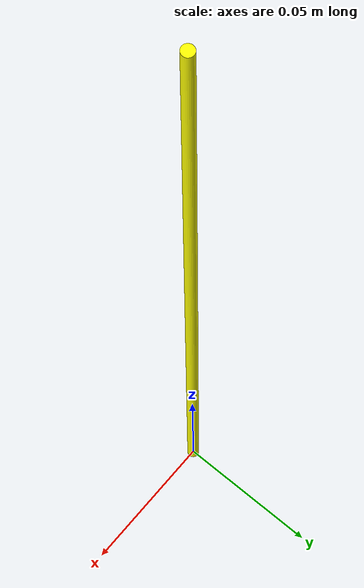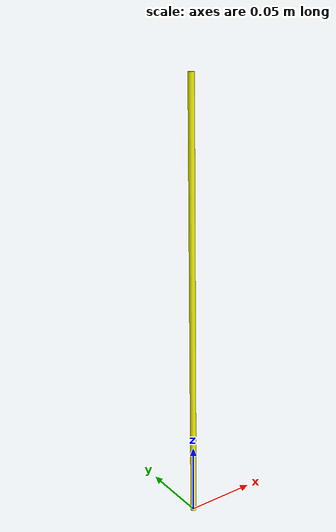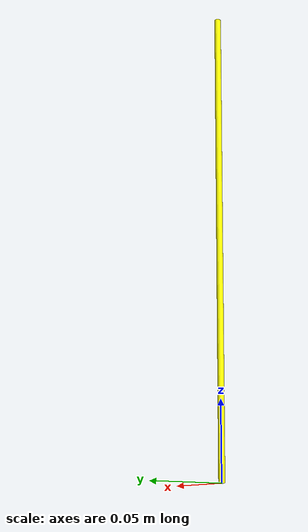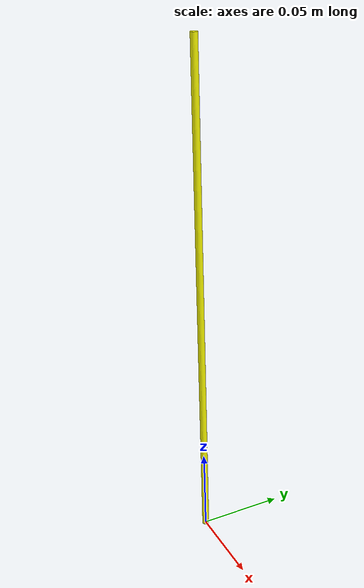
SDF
<?xml version="1.0" ?>
<sdf version="1.9">
  <model name="string_obstacle">
    <static>true</static>
    <link name="link">
      <pose>0 0 0.15 0 0 0</pose>
      <visual name="visual">
        <geometry>
          <cylinder>
            <radius>0.002</radius>
            <length>0.30</length>
          </cylinder>
        </geometry>
        <material>
          <ambient>0.9 0.9 0.0 1</ambient>
          <diffuse>1.0 1.0 0.0 1</diffuse>
        </material>
      </visual>
      <collision name="collision">
        <geometry>
          <cylinder>
            <radius>0.002</radius>
            <length>0.30</length>
          </cylinder>
        </geometry>
      </collision>
    </link>
  </model>
</sdf>
